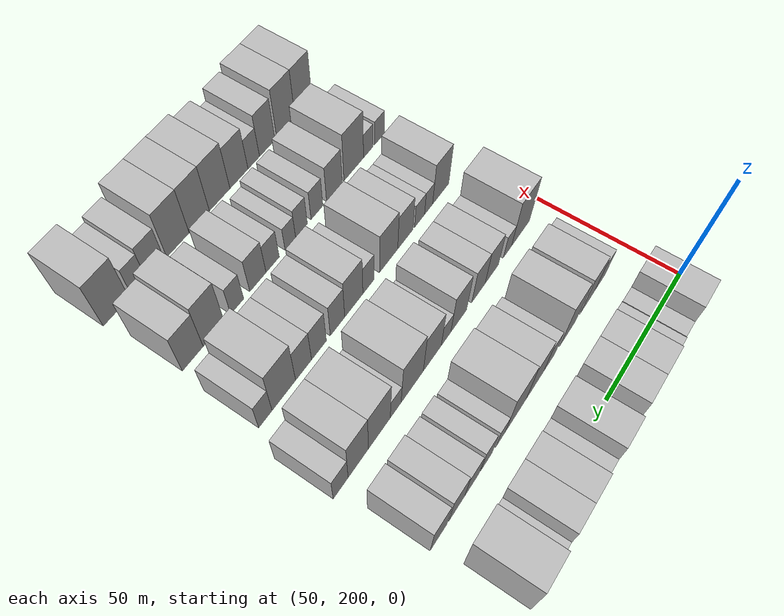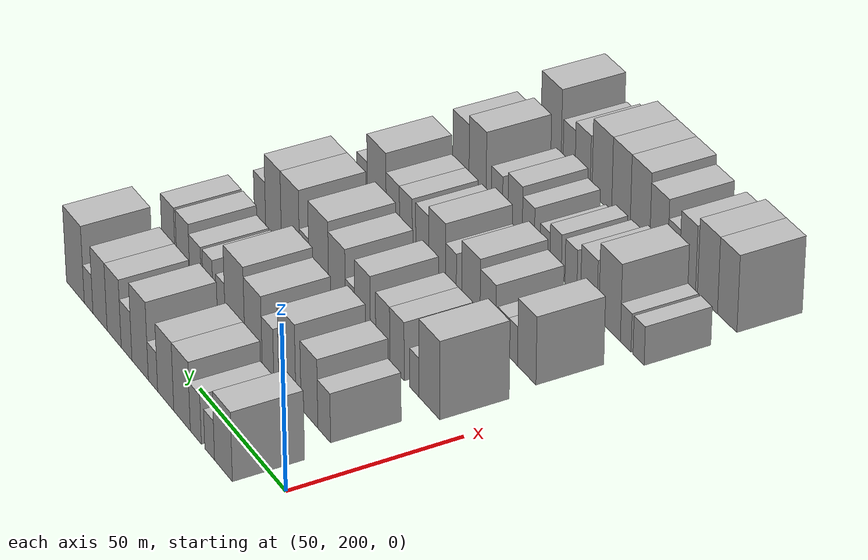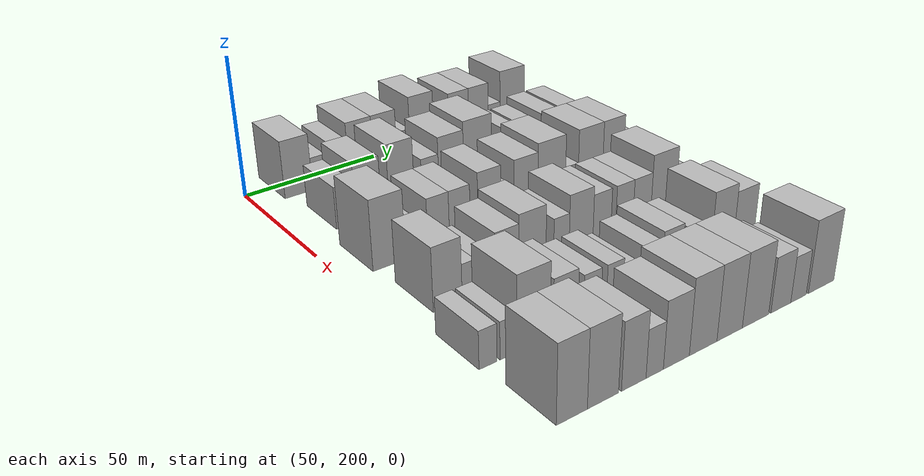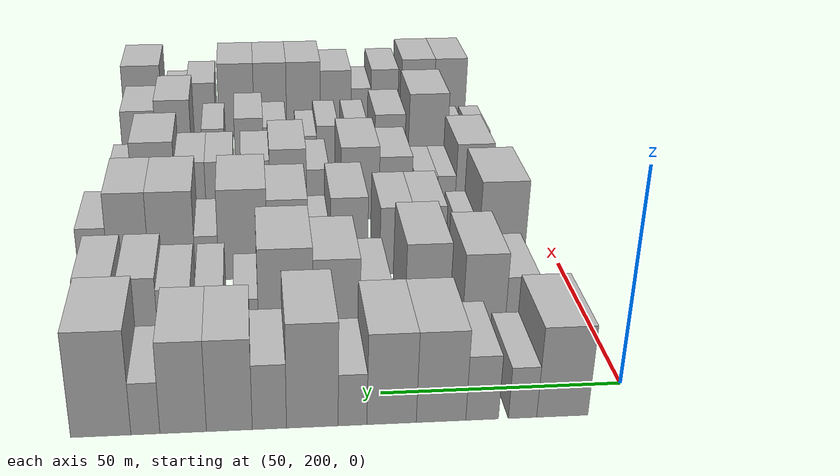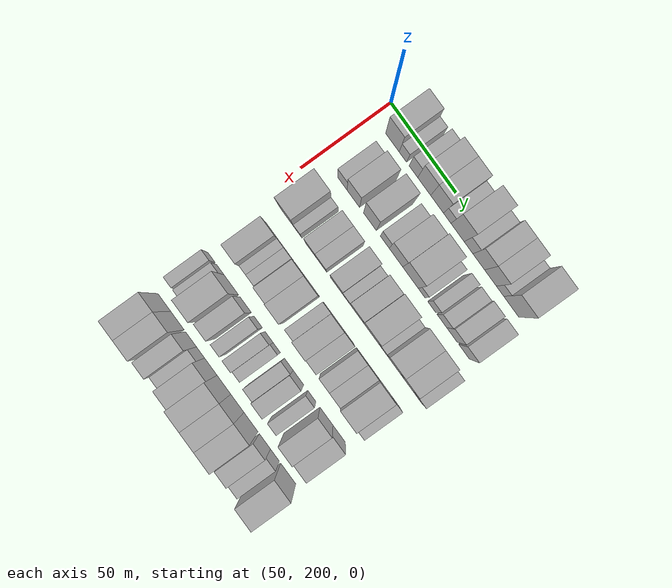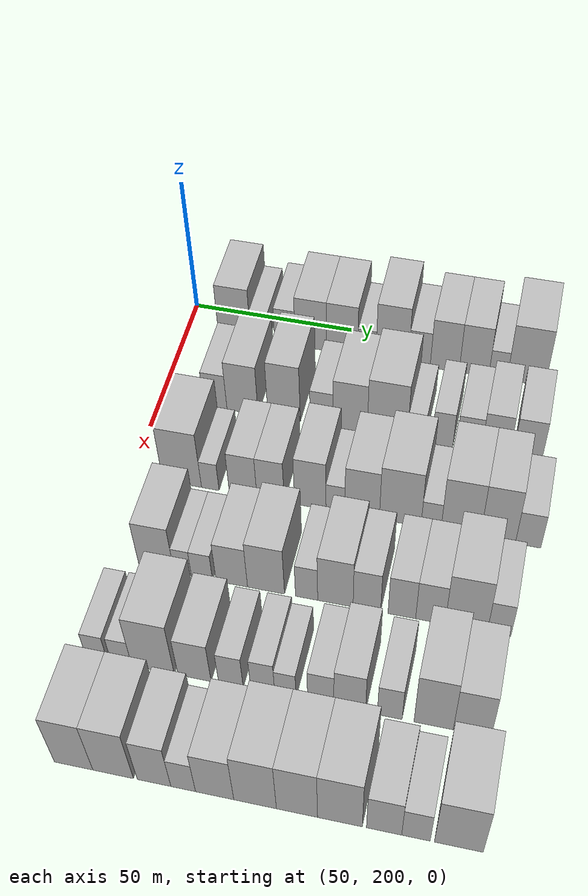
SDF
<sdf version="1.6">
 <world name="default">
  <model name="building_82">
   <static>1</static>
   <pose>50.0000 214.9138 0 0.000000 0.000000 0.000000</pose>
   <link name="link">
    <pose>0 0 10.50 0 0 0</pose>
    <collision name="collision"><geometry><box><size>20.0000 10.3367 21.0000</size></box></geometry></collision>
    <visual name="visual">
     <cast_shadows>0</cast_shadows>
     <geometry><box><size>20.0000 10.3367 21.0000</size></box></geometry>
     <material>
      <script>
       <uri>model://HANNAS_wall/materials/scripts</uri>
       <uri>model://HANNAS_wall/materials/textures</uri>
       <name>vrc/HANNAS_wall</name>
      </script>
     </material>
    </visual>
   </link>
  </model>
  <model name="building_83">
   <static>1</static>
   <pose>50.0000 222.9313 0 0.000000 0.000000 0.000000</pose>
   <link name="link">
    <pose>0 0 6.00 0 0 0</pose>
    <collision name="collision"><geometry><box><size>20.0000 5.6983 12.0000</size></box></geometry></collision>
    <visual name="visual">
     <cast_shadows>0</cast_shadows>
     <geometry><box><size>20.0000 5.6983 12.0000</size></box></geometry>
     <material>
      <script>
       <uri>model://HANNAS_wall/materials/scripts</uri>
       <uri>model://HANNAS_wall/materials/textures</uri>
       <name>vrc/HANNAS_wall</name>
      </script>
     </material>
    </visual>
   </link>
  </model>
  <model name="building_84">
   <static>1</static>
   <pose>50.0000 231.0494 0 0.000000 0.000000 0.000000</pose>
   <link name="link">
    <pose>0 0 7.50 0 0 0</pose>
    <collision name="collision"><geometry><box><size>20.0000 6.5378 15.0000</size></box></geometry></collision>
    <visual name="visual">
     <cast_shadows>0</cast_shadows>
     <geometry><box><size>20.0000 6.5378 15.0000</size></box></geometry>
     <material>
      <script>
       <uri>model://HANNAS_wall/materials/scripts</uri>
       <uri>model://HANNAS_wall/materials/textures</uri>
       <name>vrc/HANNAS_wall</name>
      </script>
     </material>
    </visual>
   </link>
  </model>
  <model name="building_85">
   <static>1</static>
   <pose>50.0000 239.2619 0 0.000000 0.000000 0.000000</pose>
   <link name="link">
    <pose>0 0 10.50 0 0 0</pose>
    <collision name="collision"><geometry><box><size>20.0000 9.8873 21.0000</size></box></geometry></collision>
    <visual name="visual">
     <cast_shadows>0</cast_shadows>
     <geometry><box><size>20.0000 9.8873 21.0000</size></box></geometry>
     <material>
      <script>
       <uri>model://HANNAS_wall/materials/scripts</uri>
       <uri>model://HANNAS_wall/materials/textures</uri>
       <name>vrc/HANNAS_wall</name>
      </script>
     </material>
    </visual>
   </link>
  </model>
  <model name="building_86">
   <static>1</static>
   <pose>50.0000 249.1035 0 0.000000 0.000000 0.000000</pose>
   <link name="link">
    <pose>0 0 10.50 0 0 0</pose>
    <collision name="collision"><geometry><box><size>20.0000 9.7959 21.0000</size></box></geometry></collision>
    <visual name="visual">
     <cast_shadows>0</cast_shadows>
     <geometry><box><size>20.0000 9.7959 21.0000</size></box></geometry>
     <material>
      <script>
       <uri>model://HANNAS_wall/materials/scripts</uri>
       <uri>model://HANNAS_wall/materials/textures</uri>
       <name>vrc/HANNAS_wall</name>
      </script>
     </material>
    </visual>
   </link>
  </model>
  <model name="building_87">
   <static>1</static>
   <pose>50.0000 256.8432 0 0.000000 0.000000 0.000000</pose>
   <link name="link">
    <pose>0 0 6.00 0 0 0</pose>
    <collision name="collision"><geometry><box><size>20.0000 5.6834 12.0000</size></box></geometry></collision>
    <visual name="visual">
     <cast_shadows>0</cast_shadows>
     <geometry><box><size>20.0000 5.6834 12.0000</size></box></geometry>
     <material>
      <script>
       <uri>model://HANNAS_wall/materials/scripts</uri>
       <uri>model://HANNAS_wall/materials/textures</uri>
       <name>vrc/HANNAS_wall</name>
      </script>
     </material>
    </visual>
   </link>
  </model>
  <model name="building_88">
   <static>1</static>
   <pose>50.0000 264.7592 0 0.000000 0.000000 0.000000</pose>
   <link name="link">
    <pose>0 0 12.00 0 0 0</pose>
    <collision name="collision"><geometry><box><size>20.0000 10.1486 24.0000</size></box></geometry></collision>
    <visual name="visual">
     <cast_shadows>0</cast_shadows>
     <geometry><box><size>20.0000 10.1486 24.0000</size></box></geometry>
     <material>
      <script>
       <uri>model://HANNAS_wall/materials/scripts</uri>
       <uri>model://HANNAS_wall/materials/textures</uri>
       <name>vrc/HANNAS_wall</name>
      </script>
     </material>
    </visual>
   </link>
  </model>
  <model name="building_89">
   <static>1</static>
   <pose>50.0000 273.1756 0 0.000000 0.000000 0.000000</pose>
   <link name="link">
    <pose>0 0 7.50 0 0 0</pose>
    <collision name="collision"><geometry><box><size>20.0000 6.6842 15.0000</size></box></geometry></collision>
    <visual name="visual">
     <cast_shadows>0</cast_shadows>
     <geometry><box><size>20.0000 6.6842 15.0000</size></box></geometry>
     <material>
      <script>
       <uri>model://HANNAS_wall/materials/scripts</uri>
       <uri>model://HANNAS_wall/materials/textures</uri>
       <name>vrc/HANNAS_wall</name>
      </script>
     </material>
    </visual>
   </link>
  </model>
  <model name="building_90">
   <static>1</static>
   <pose>50.0000 280.9811 0 0.000000 0.000000 0.000000</pose>
   <link name="link">
    <pose>0 0 10.50 0 0 0</pose>
    <collision name="collision"><geometry><box><size>20.0000 8.9268 21.0000</size></box></geometry></collision>
    <visual name="visual">
     <cast_shadows>0</cast_shadows>
     <geometry><box><size>20.0000 8.9268 21.0000</size></box></geometry>
     <material>
      <script>
       <uri>model://HANNAS_wall/materials/scripts</uri>
       <uri>model://HANNAS_wall/materials/textures</uri>
       <name>vrc/HANNAS_wall</name>
      </script>
     </material>
    </visual>
   </link>
  </model>
  <model name="building_91">
   <static>1</static>
   <pose>50.0000 289.9585 0 0.000000 0.000000 0.000000</pose>
   <link name="link">
    <pose>0 0 10.50 0 0 0</pose>
    <collision name="collision"><geometry><box><size>20.0000 9.0280 21.0000</size></box></geometry></collision>
    <visual name="visual">
     <cast_shadows>0</cast_shadows>
     <geometry><box><size>20.0000 9.0280 21.0000</size></box></geometry>
     <material>
      <script>
       <uri>model://HANNAS_wall/materials/scripts</uri>
       <uri>model://HANNAS_wall/materials/textures</uri>
       <name>vrc/HANNAS_wall</name>
      </script>
     </material>
    </visual>
   </link>
  </model>
  <model name="building_92">
   <static>1</static>
   <pose>50.0000 297.2734 0 0.000000 0.000000 0.000000</pose>
   <link name="link">
    <pose>0 0 6.00 0 0 0</pose>
    <collision name="collision"><geometry><box><size>20.0000 5.6020 12.0000</size></box></geometry></collision>
    <visual name="visual">
     <cast_shadows>0</cast_shadows>
     <geometry><box><size>20.0000 5.6020 12.0000</size></box></geometry>
     <material>
      <script>
       <uri>model://HANNAS_wall/materials/scripts</uri>
       <uri>model://HANNAS_wall/materials/textures</uri>
       <name>vrc/HANNAS_wall</name>
      </script>
     </material>
    </visual>
   </link>
  </model>
  <model name="building_93">
   <static>1</static>
   <pose>50.0000 305.8729 0 0.000000 0.000000 0.000000</pose>
   <link name="link">
    <pose>0 0 12.00 0 0 0</pose>
    <collision name="collision"><geometry><box><size>20.0000 11.5970 24.0000</size></box></geometry></collision>
    <visual name="visual">
     <cast_shadows>0</cast_shadows>
     <geometry><box><size>20.0000 11.5970 24.0000</size></box></geometry>
     <material>
      <script>
       <uri>model://HANNAS_wall/materials/scripts</uri>
       <uri>model://HANNAS_wall/materials/textures</uri>
       <name>vrc/HANNAS_wall</name>
      </script>
     </material>
    </visual>
   </link>
  </model>
  <model name="building_200">
   <static>1</static>
   <pose>79.0000 216.7693 0 0.000000 0.000000 0.000000</pose>
   <link name="link">
    <pose>0 0 7.50 0 0 0</pose>
    <collision name="collision"><geometry><box><size>20.0000 7.1513 15.0000</size></box></geometry></collision>
    <visual name="visual">
     <cast_shadows>0</cast_shadows>
     <geometry><box><size>20.0000 7.1513 15.0000</size></box></geometry>
     <material>
      <script>
       <uri>model://HANNAS_wall/materials/scripts</uri>
       <uri>model://HANNAS_wall/materials/textures</uri>
       <name>vrc/HANNAS_wall</name>
      </script>
     </material>
    </visual>
   </link>
  </model>
  <model name="building_201">
   <static>1</static>
   <pose>79.0000 225.1079 0 0.000000 0.000000 0.000000</pose>
   <link name="link">
    <pose>0 0 10.50 0 0 0</pose>
    <collision name="collision"><geometry><box><size>20.0000 9.5257 21.0000</size></box></geometry></collision>
    <visual name="visual">
     <cast_shadows>0</cast_shadows>
     <geometry><box><size>20.0000 9.5257 21.0000</size></box></geometry>
     <material>
      <script>
       <uri>model://HANNAS_wall/materials/scripts</uri>
       <uri>model://HANNAS_wall/materials/textures</uri>
       <name>vrc/HANNAS_wall</name>
      </script>
     </material>
    </visual>
   </link>
  </model>
  <model name="building_202">
   <static>1</static>
   <pose>79.0000 237.7878 0 0.000000 0.000000 0.000000</pose>
   <link name="link">
    <pose>0 0 12.00 0 0 0</pose>
    <collision name="collision"><geometry><box><size>20.0000 9.8343 24.0000</size></box></geometry></collision>
    <visual name="visual">
     <cast_shadows>0</cast_shadows>
     <geometry><box><size>20.0000 9.8343 24.0000</size></box></geometry>
     <material>
      <script>
       <uri>model://HANNAS_wall/materials/scripts</uri>
       <uri>model://HANNAS_wall/materials/textures</uri>
       <name>vrc/HANNAS_wall</name>
      </script>
     </material>
    </visual>
   </link>
  </model>
  <model name="building_203">
   <static>1</static>
   <pose>79.0000 249.1146 0 0.000000 0.000000 0.000000</pose>
   <link name="link">
    <pose>0 0 7.50 0 0 0</pose>
    <collision name="collision"><geometry><box><size>20.0000 6.8191 15.0000</size></box></geometry></collision>
    <visual name="visual">
     <cast_shadows>0</cast_shadows>
     <geometry><box><size>20.0000 6.8191 15.0000</size></box></geometry>
     <material>
      <script>
       <uri>model://HANNAS_wall/materials/scripts</uri>
       <uri>model://HANNAS_wall/materials/textures</uri>
       <name>vrc/HANNAS_wall</name>
      </script>
     </material>
    </visual>
   </link>
  </model>
  <model name="building_204">
   <static>1</static>
   <pose>79.0000 257.6647 0 0.000000 0.000000 0.000000</pose>
   <link name="link">
    <pose>0 0 10.50 0 0 0</pose>
    <collision name="collision"><geometry><box><size>20.0000 10.2810 21.0000</size></box></geometry></collision>
    <visual name="visual">
     <cast_shadows>0</cast_shadows>
     <geometry><box><size>20.0000 10.2810 21.0000</size></box></geometry>
     <material>
      <script>
       <uri>model://HANNAS_wall/materials/scripts</uri>
       <uri>model://HANNAS_wall/materials/textures</uri>
       <name>vrc/HANNAS_wall</name>
      </script>
     </material>
    </visual>
   </link>
  </model>
  <model name="building_205">
   <static>1</static>
   <pose>79.0000 268.7401 0 0.000000 0.000000 0.000000</pose>
   <link name="link">
    <pose>0 0 12.00 0 0 0</pose>
    <collision name="collision"><geometry><box><size>20.0000 11.8698 24.0000</size></box></geometry></collision>
    <visual name="visual">
     <cast_shadows>0</cast_shadows>
     <geometry><box><size>20.0000 11.8698 24.0000</size></box></geometry>
     <material>
      <script>
       <uri>model://HANNAS_wall/materials/scripts</uri>
       <uri>model://HANNAS_wall/materials/textures</uri>
       <name>vrc/HANNAS_wall</name>
      </script>
     </material>
    </visual>
   </link>
  </model>
  <model name="building_206">
   <static>1</static>
   <pose>79.0000 277.2997 0 0.000000 0.000000 0.000000</pose>
   <link name="link">
    <pose>0 0 6.00 0 0 0</pose>
    <collision name="collision"><geometry><box><size>20.0000 5.2495 12.0000</size></box></geometry></collision>
    <visual name="visual">
     <cast_shadows>0</cast_shadows>
     <geometry><box><size>20.0000 5.2495 12.0000</size></box></geometry>
     <material>
      <script>
       <uri>model://HANNAS_wall/materials/scripts</uri>
       <uri>model://HANNAS_wall/materials/textures</uri>
       <name>vrc/HANNAS_wall</name>
      </script>
     </material>
    </visual>
   </link>
  </model>
  <model name="building_207">
   <static>1</static>
   <pose>79.0000 284.9890 0 0.000000 0.000000 0.000000</pose>
   <link name="link">
    <pose>0 0 7.50 0 0 0</pose>
    <collision name="collision"><geometry><box><size>20.0000 6.1292 15.0000</size></box></geometry></collision>
    <visual name="visual">
     <cast_shadows>0</cast_shadows>
     <geometry><box><size>20.0000 6.1292 15.0000</size></box></geometry>
     <material>
      <script>
       <uri>model://HANNAS_wall/materials/scripts</uri>
       <uri>model://HANNAS_wall/materials/textures</uri>
       <name>vrc/HANNAS_wall</name>
      </script>
     </material>
    </visual>
   </link>
  </model>
  <model name="building_208">
   <static>1</static>
   <pose>79.0000 292.7403 0 0.000000 0.000000 0.000000</pose>
   <link name="link">
    <pose>0 0 7.50 0 0 0</pose>
    <collision name="collision"><geometry><box><size>20.0000 7.3733 15.0000</size></box></geometry></collision>
    <visual name="visual">
     <cast_shadows>0</cast_shadows>
     <geometry><box><size>20.0000 7.3733 15.0000</size></box></geometry>
     <material>
      <script>
       <uri>model://HANNAS_wall/materials/scripts</uri>
       <uri>model://HANNAS_wall/materials/textures</uri>
       <name>vrc/HANNAS_wall</name>
      </script>
     </material>
    </visual>
   </link>
  </model>
  <model name="building_209">
   <static>1</static>
   <pose>79.0000 300.4870 0 0.000000 0.000000 0.000000</pose>
   <link name="link">
    <pose>0 0 9.00 0 0 0</pose>
    <collision name="collision"><geometry><box><size>20.0000 8.1201 18.0000</size></box></geometry></collision>
    <visual name="visual">
     <cast_shadows>0</cast_shadows>
     <geometry><box><size>20.0000 8.1201 18.0000</size></box></geometry>
     <material>
      <script>
       <uri>model://HANNAS_wall/materials/scripts</uri>
       <uri>model://HANNAS_wall/materials/textures</uri>
       <name>vrc/HANNAS_wall</name>
      </script>
     </material>
    </visual>
   </link>
  </model>
  <model name="building_210">
   <static>1</static>
   <pose>79.0000 309.6869 0 0.000000 0.000000 0.000000</pose>
   <link name="link">
    <pose>0 0 9.00 0 0 0</pose>
    <collision name="collision"><geometry><box><size>20.0000 8.2798 18.0000</size></box></geometry></collision>
    <visual name="visual">
     <cast_shadows>0</cast_shadows>
     <geometry><box><size>20.0000 8.2798 18.0000</size></box></geometry>
     <material>
      <script>
       <uri>model://HANNAS_wall/materials/scripts</uri>
       <uri>model://HANNAS_wall/materials/textures</uri>
       <name>vrc/HANNAS_wall</name>
      </script>
     </material>
    </visual>
   </link>
  </model>
  <model name="building_314">
   <static>1</static>
   <pose>108.0000 214.9882 0 0.000000 0.000000 0.000000</pose>
   <link name="link">
    <pose>0 0 12.00 0 0 0</pose>
    <collision name="collision"><geometry><box><size>20.0000 11.4412 24.0000</size></box></geometry></collision>
    <visual name="visual">
     <cast_shadows>0</cast_shadows>
     <geometry><box><size>20.0000 11.4412 24.0000</size></box></geometry>
     <material>
      <script>
       <uri>model://HANNAS_wall/materials/scripts</uri>
       <uri>model://HANNAS_wall/materials/textures</uri>
       <name>vrc/HANNAS_wall</name>
      </script>
     </material>
    </visual>
   </link>
  </model>
  <model name="building_315">
   <static>1</static>
   <pose>108.0000 223.2821 0 0.000000 0.000000 0.000000</pose>
   <link name="link">
    <pose>0 0 6.00 0 0 0</pose>
    <collision name="collision"><geometry><box><size>20.0000 5.1465 12.0000</size></box></geometry></collision>
    <visual name="visual">
     <cast_shadows>0</cast_shadows>
     <geometry><box><size>20.0000 5.1465 12.0000</size></box></geometry>
     <material>
      <script>
       <uri>model://HANNAS_wall/materials/scripts</uri>
       <uri>model://HANNAS_wall/materials/textures</uri>
       <name>vrc/HANNAS_wall</name>
      </script>
     </material>
    </visual>
   </link>
  </model>
  <model name="building_316">
   <static>1</static>
   <pose>108.0000 232.8754 0 0.000000 0.000000 0.000000</pose>
   <link name="link">
    <pose>0 0 9.00 0 0 0</pose>
    <collision name="collision"><geometry><box><size>20.0000 8.0402 18.0000</size></box></geometry></collision>
    <visual name="visual">
     <cast_shadows>0</cast_shadows>
     <geometry><box><size>20.0000 8.0402 18.0000</size></box></geometry>
     <material>
      <script>
       <uri>model://HANNAS_wall/materials/scripts</uri>
       <uri>model://HANNAS_wall/materials/textures</uri>
       <name>vrc/HANNAS_wall</name>
      </script>
     </material>
    </visual>
   </link>
  </model>
  <model name="building_317">
   <static>1</static>
   <pose>108.0000 240.8619 0 0.000000 0.000000 0.000000</pose>
   <link name="link">
    <pose>0 0 9.00 0 0 0</pose>
    <collision name="collision"><geometry><box><size>20.0000 7.9327 18.0000</size></box></geometry></collision>
    <visual name="visual">
     <cast_shadows>0</cast_shadows>
     <geometry><box><size>20.0000 7.9327 18.0000</size></box></geometry>
     <material>
      <script>
       <uri>model://HANNAS_wall/materials/scripts</uri>
       <uri>model://HANNAS_wall/materials/textures</uri>
       <name>vrc/HANNAS_wall</name>
      </script>
     </material>
    </visual>
   </link>
  </model>
  <model name="building_318">
   <static>1</static>
   <pose>108.0000 252.3360 0 0.000000 0.000000 0.000000</pose>
   <link name="link">
    <pose>0 0 10.50 0 0 0</pose>
    <collision name="collision"><geometry><box><size>20.0000 9.0155 21.0000</size></box></geometry></collision>
    <visual name="visual">
     <cast_shadows>0</cast_shadows>
     <geometry><box><size>20.0000 9.0155 21.0000</size></box></geometry>
     <material>
      <script>
       <uri>model://HANNAS_wall/materials/scripts</uri>
       <uri>model://HANNAS_wall/materials/textures</uri>
       <name>vrc/HANNAS_wall</name>
      </script>
     </material>
    </visual>
   </link>
  </model>
  <model name="building_319">
   <static>1</static>
   <pose>108.0000 259.5348 0 0.000000 0.000000 0.000000</pose>
   <link name="link">
    <pose>0 0 6.00 0 0 0</pose>
    <collision name="collision"><geometry><box><size>20.0000 5.3821 12.0000</size></box></geometry></collision>
    <visual name="visual">
     <cast_shadows>0</cast_shadows>
     <geometry><box><size>20.0000 5.3821 12.0000</size></box></geometry>
     <material>
      <script>
       <uri>model://HANNAS_wall/materials/scripts</uri>
       <uri>model://HANNAS_wall/materials/textures</uri>
       <name>vrc/HANNAS_wall</name>
      </script>
     </material>
    </visual>
   </link>
  </model>
  <model name="building_320">
   <static>1</static>
   <pose>108.0000 267.1185 0 0.000000 0.000000 0.000000</pose>
   <link name="link">
    <pose>0 0 10.50 0 0 0</pose>
    <collision name="collision"><geometry><box><size>20.0000 9.7854 21.0000</size></box></geometry></collision>
    <visual name="visual">
     <cast_shadows>0</cast_shadows>
     <geometry><box><size>20.0000 9.7854 21.0000</size></box></geometry>
     <material>
      <script>
       <uri>model://HANNAS_wall/materials/scripts</uri>
       <uri>model://HANNAS_wall/materials/textures</uri>
       <name>vrc/HANNAS_wall</name>
      </script>
     </material>
    </visual>
   </link>
  </model>
  <model name="building_321">
   <static>1</static>
   <pose>108.0000 277.8804 0 0.000000 0.000000 0.000000</pose>
   <link name="link">
    <pose>0 0 12.00 0 0 0</pose>
    <collision name="collision"><geometry><box><size>20.0000 11.7383 24.0000</size></box></geometry></collision>
    <visual name="visual">
     <cast_shadows>0</cast_shadows>
     <geometry><box><size>20.0000 11.7383 24.0000</size></box></geometry>
     <material>
      <script>
       <uri>model://HANNAS_wall/materials/scripts</uri>
       <uri>model://HANNAS_wall/materials/textures</uri>
       <name>vrc/HANNAS_wall</name>
      </script>
     </material>
    </visual>
   </link>
  </model>
  <model name="building_322">
   <static>1</static>
   <pose>108.0000 286.5412 0 0.000000 0.000000 0.000000</pose>
   <link name="link">
    <pose>0 0 6.00 0 0 0</pose>
    <collision name="collision"><geometry><box><size>20.0000 5.5834 12.0000</size></box></geometry></collision>
    <visual name="visual">
     <cast_shadows>0</cast_shadows>
     <geometry><box><size>20.0000 5.5834 12.0000</size></box></geometry>
     <material>
      <script>
       <uri>model://HANNAS_wall/materials/scripts</uri>
       <uri>model://HANNAS_wall/materials/textures</uri>
       <name>vrc/HANNAS_wall</name>
      </script>
     </material>
    </visual>
   </link>
  </model>
  <model name="building_323">
   <static>1</static>
   <pose>108.0000 294.8271 0 0.000000 0.000000 0.000000</pose>
   <link name="link">
    <pose>0 0 12.00 0 0 0</pose>
    <collision name="collision"><geometry><box><size>20.0000 10.9882 24.0000</size></box></geometry></collision>
    <visual name="visual">
     <cast_shadows>0</cast_shadows>
     <geometry><box><size>20.0000 10.9882 24.0000</size></box></geometry>
     <material>
      <script>
       <uri>model://HANNAS_wall/materials/scripts</uri>
       <uri>model://HANNAS_wall/materials/textures</uri>
       <name>vrc/HANNAS_wall</name>
      </script>
     </material>
    </visual>
   </link>
  </model>
  <model name="building_324">
   <static>1</static>
   <pose>108.0000 305.1737 0 0.000000 0.000000 0.000000</pose>
   <link name="link">
    <pose>0 0 12.00 0 0 0</pose>
    <collision name="collision"><geometry><box><size>20.0000 9.7052 24.0000</size></box></geometry></collision>
    <visual name="visual">
     <cast_shadows>0</cast_shadows>
     <geometry><box><size>20.0000 9.7052 24.0000</size></box></geometry>
     <material>
      <script>
       <uri>model://HANNAS_wall/materials/scripts</uri>
       <uri>model://HANNAS_wall/materials/textures</uri>
       <name>vrc/HANNAS_wall</name>
      </script>
     </material>
    </visual>
   </link>
  </model>
  <model name="building_325">
   <static>1</static>
   <pose>108.0000 313.5355 0 0.000000 0.000000 0.000000</pose>
   <link name="link">
    <pose>0 0 7.50 0 0 0</pose>
    <collision name="collision"><geometry><box><size>20.0000 7.0183 15.0000</size></box></geometry></collision>
    <visual name="visual">
     <cast_shadows>0</cast_shadows>
     <geometry><box><size>20.0000 7.0183 15.0000</size></box></geometry>
     <material>
      <script>
       <uri>model://HANNAS_wall/materials/scripts</uri>
       <uri>model://HANNAS_wall/materials/textures</uri>
       <name>vrc/HANNAS_wall</name>
      </script>
     </material>
    </visual>
   </link>
  </model>
  <model name="building_431">
   <static>1</static>
   <pose>137.0000 216.3632 0 0.000000 0.000000 0.000000</pose>
   <link name="link">
    <pose>0 0 10.50 0 0 0</pose>
    <collision name="collision"><geometry><box><size>20.0000 9.8466 21.0000</size></box></geometry></collision>
    <visual name="visual">
     <cast_shadows>0</cast_shadows>
     <geometry><box><size>20.0000 9.8466 21.0000</size></box></geometry>
     <material>
      <script>
       <uri>model://HANNAS_wall/materials/scripts</uri>
       <uri>model://HANNAS_wall/materials/textures</uri>
       <name>vrc/HANNAS_wall</name>
      </script>
     </material>
    </visual>
   </link>
  </model>
  <model name="building_432">
   <static>1</static>
   <pose>137.0000 223.7061 0 0.000000 0.000000 0.000000</pose>
   <link name="link">
    <pose>0 0 6.00 0 0 0</pose>
    <collision name="collision"><geometry><box><size>20.0000 4.8393 12.0000</size></box></geometry></collision>
    <visual name="visual">
     <cast_shadows>0</cast_shadows>
     <geometry><box><size>20.0000 4.8393 12.0000</size></box></geometry>
     <material>
      <script>
       <uri>model://HANNAS_wall/materials/scripts</uri>
       <uri>model://HANNAS_wall/materials/textures</uri>
       <name>vrc/HANNAS_wall</name>
      </script>
     </material>
    </visual>
   </link>
  </model>
  <model name="building_433">
   <static>1</static>
   <pose>137.0000 229.0638 0 0.000000 0.000000 0.000000</pose>
   <link name="link">
    <pose>0 0 6.00 0 0 0</pose>
    <collision name="collision"><geometry><box><size>20.0000 5.8761 12.0000</size></box></geometry></collision>
    <visual name="visual">
     <cast_shadows>0</cast_shadows>
     <geometry><box><size>20.0000 5.8761 12.0000</size></box></geometry>
     <material>
      <script>
       <uri>model://HANNAS_wall/materials/scripts</uri>
       <uri>model://HANNAS_wall/materials/textures</uri>
       <name>vrc/HANNAS_wall</name>
      </script>
     </material>
    </visual>
   </link>
  </model>
  <model name="building_434">
   <static>1</static>
   <pose>137.0000 237.3495 0 0.000000 0.000000 0.000000</pose>
   <link name="link">
    <pose>0 0 9.00 0 0 0</pose>
    <collision name="collision"><geometry><box><size>20.0000 8.6954 18.0000</size></box></geometry></collision>
    <visual name="visual">
     <cast_shadows>0</cast_shadows>
     <geometry><box><size>20.0000 8.6954 18.0000</size></box></geometry>
     <material>
      <script>
       <uri>model://HANNAS_wall/materials/scripts</uri>
       <uri>model://HANNAS_wall/materials/textures</uri>
       <name>vrc/HANNAS_wall</name>
      </script>
     </material>
    </visual>
   </link>
  </model>
  <model name="building_435">
   <static>1</static>
   <pose>137.0000 246.7951 0 0.000000 0.000000 0.000000</pose>
   <link name="link">
    <pose>0 0 10.50 0 0 0</pose>
    <collision name="collision"><geometry><box><size>20.0000 10.1958 21.0000</size></box></geometry></collision>
    <visual name="visual">
     <cast_shadows>0</cast_shadows>
     <geometry><box><size>20.0000 10.1958 21.0000</size></box></geometry>
     <material>
      <script>
       <uri>model://HANNAS_wall/materials/scripts</uri>
       <uri>model://HANNAS_wall/materials/textures</uri>
       <name>vrc/HANNAS_wall</name>
      </script>
     </material>
    </visual>
   </link>
  </model>
  <model name="building_436">
   <static>1</static>
   <pose>137.0000 257.9232 0 0.000000 0.000000 0.000000</pose>
   <link name="link">
    <pose>0 0 7.50 0 0 0</pose>
    <collision name="collision"><geometry><box><size>20.0000 6.0602 15.0000</size></box></geometry></collision>
    <visual name="visual">
     <cast_shadows>0</cast_shadows>
     <geometry><box><size>20.0000 6.0602 15.0000</size></box></geometry>
     <material>
      <script>
       <uri>model://HANNAS_wall/materials/scripts</uri>
       <uri>model://HANNAS_wall/materials/textures</uri>
       <name>vrc/HANNAS_wall</name>
      </script>
     </material>
    </visual>
   </link>
  </model>
  <model name="building_437">
   <static>1</static>
   <pose>137.0000 265.7504 0 0.000000 0.000000 0.000000</pose>
   <link name="link">
    <pose>0 0 10.50 0 0 0</pose>
    <collision name="collision"><geometry><box><size>20.0000 9.5942 21.0000</size></box></geometry></collision>
    <visual name="visual">
     <cast_shadows>0</cast_shadows>
     <geometry><box><size>20.0000 9.5942 21.0000</size></box></geometry>
     <material>
      <script>
       <uri>model://HANNAS_wall/materials/scripts</uri>
       <uri>model://HANNAS_wall/materials/textures</uri>
       <name>vrc/HANNAS_wall</name>
      </script>
     </material>
    </visual>
   </link>
  </model>
  <model name="building_438">
   <static>1</static>
   <pose>137.0000 274.2566 0 0.000000 0.000000 0.000000</pose>
   <link name="link">
    <pose>0 0 9.00 0 0 0</pose>
    <collision name="collision"><geometry><box><size>20.0000 7.4181 18.0000</size></box></geometry></collision>
    <visual name="visual">
     <cast_shadows>0</cast_shadows>
     <geometry><box><size>20.0000 7.4181 18.0000</size></box></geometry>
     <material>
      <script>
       <uri>model://HANNAS_wall/materials/scripts</uri>
       <uri>model://HANNAS_wall/materials/textures</uri>
       <name>vrc/HANNAS_wall</name>
      </script>
     </material>
    </visual>
   </link>
  </model>
  <model name="building_439">
   <static>1</static>
   <pose>137.0000 283.6628 0 0.000000 0.000000 0.000000</pose>
   <link name="link">
    <pose>0 0 9.00 0 0 0</pose>
    <collision name="collision"><geometry><box><size>20.0000 7.3943 18.0000</size></box></geometry></collision>
    <visual name="visual">
     <cast_shadows>0</cast_shadows>
     <geometry><box><size>20.0000 7.3943 18.0000</size></box></geometry>
     <material>
      <script>
       <uri>model://HANNAS_wall/materials/scripts</uri>
       <uri>model://HANNAS_wall/materials/textures</uri>
       <name>vrc/HANNAS_wall</name>
      </script>
     </material>
    </visual>
   </link>
  </model>
  <model name="building_440">
   <static>1</static>
   <pose>137.0000 291.2670 0 0.000000 0.000000 0.000000</pose>
   <link name="link">
    <pose>0 0 9.00 0 0 0</pose>
    <collision name="collision"><geometry><box><size>20.0000 7.8141 18.0000</size></box></geometry></collision>
    <visual name="visual">
     <cast_shadows>0</cast_shadows>
     <geometry><box><size>20.0000 7.8141 18.0000</size></box></geometry>
     <material>
      <script>
       <uri>model://HANNAS_wall/materials/scripts</uri>
       <uri>model://HANNAS_wall/materials/textures</uri>
       <name>vrc/HANNAS_wall</name>
      </script>
     </material>
    </visual>
   </link>
  </model>
  <model name="building_441">
   <static>1</static>
   <pose>137.0000 300.7685 0 0.000000 0.000000 0.000000</pose>
   <link name="link">
    <pose>0 0 12.00 0 0 0</pose>
    <collision name="collision"><geometry><box><size>20.0000 11.1889 24.0000</size></box></geometry></collision>
    <visual name="visual">
     <cast_shadows>0</cast_shadows>
     <geometry><box><size>20.0000 11.1889 24.0000</size></box></geometry>
     <material>
      <script>
       <uri>model://HANNAS_wall/materials/scripts</uri>
       <uri>model://HANNAS_wall/materials/textures</uri>
       <name>vrc/HANNAS_wall</name>
      </script>
     </material>
    </visual>
   </link>
  </model>
  <model name="building_442">
   <static>1</static>
   <pose>137.0000 309.4513 0 0.000000 0.000000 0.000000</pose>
   <link name="link">
    <pose>0 0 7.50 0 0 0</pose>
    <collision name="collision"><geometry><box><size>20.0000 6.1768 15.0000</size></box></geometry></collision>
    <visual name="visual">
     <cast_shadows>0</cast_shadows>
     <geometry><box><size>20.0000 6.1768 15.0000</size></box></geometry>
     <material>
      <script>
       <uri>model://HANNAS_wall/materials/scripts</uri>
       <uri>model://HANNAS_wall/materials/textures</uri>
       <name>vrc/HANNAS_wall</name>
      </script>
     </material>
    </visual>
   </link>
  </model>
  <model name="building_551">
   <static>1</static>
   <pose>166.0000 209.1065 0 0.000000 0.000000 0.000000</pose>
   <link name="link">
    <pose>0 0 6.00 0 0 0</pose>
    <collision name="collision"><geometry><box><size>20.0000 5.7775 12.0000</size></box></geometry></collision>
    <visual name="visual">
     <cast_shadows>0</cast_shadows>
     <geometry><box><size>20.0000 5.7775 12.0000</size></box></geometry>
     <material>
      <script>
       <uri>model://HANNAS_wall/materials/scripts</uri>
       <uri>model://HANNAS_wall/materials/textures</uri>
       <name>vrc/HANNAS_wall</name>
      </script>
     </material>
    </visual>
   </link>
  </model>
  <model name="building_552">
   <static>1</static>
   <pose>166.0000 215.7816 0 0.000000 0.000000 0.000000</pose>
   <link name="link">
    <pose>0 0 6.00 0 0 0</pose>
    <collision name="collision"><geometry><box><size>20.0000 5.5727 12.0000</size></box></geometry></collision>
    <visual name="visual">
     <cast_shadows>0</cast_shadows>
     <geometry><box><size>20.0000 5.5727 12.0000</size></box></geometry>
     <material>
      <script>
       <uri>model://HANNAS_wall/materials/scripts</uri>
       <uri>model://HANNAS_wall/materials/textures</uri>
       <name>vrc/HANNAS_wall</name>
      </script>
     </material>
    </visual>
   </link>
  </model>
  <model name="building_553">
   <static>1</static>
   <pose>166.0000 224.2328 0 0.000000 0.000000 0.000000</pose>
   <link name="link">
    <pose>0 0 12.00 0 0 0</pose>
    <collision name="collision"><geometry><box><size>20.0000 11.3297 24.0000</size></box></geometry></collision>
    <visual name="visual">
     <cast_shadows>0</cast_shadows>
     <geometry><box><size>20.0000 11.3297 24.0000</size></box></geometry>
     <material>
      <script>
       <uri>model://HANNAS_wall/materials/scripts</uri>
       <uri>model://HANNAS_wall/materials/textures</uri>
       <name>vrc/HANNAS_wall</name>
      </script>
     </material>
    </visual>
   </link>
  </model>
  <model name="building_554">
   <static>1</static>
   <pose>166.0000 235.2764 0 0.000000 0.000000 0.000000</pose>
   <link name="link">
    <pose>0 0 9.00 0 0 0</pose>
    <collision name="collision"><geometry><box><size>20.0000 8.7575 18.0000</size></box></geometry></collision>
    <visual name="visual">
     <cast_shadows>0</cast_shadows>
     <geometry><box><size>20.0000 8.7575 18.0000</size></box></geometry>
     <material>
      <script>
       <uri>model://HANNAS_wall/materials/scripts</uri>
       <uri>model://HANNAS_wall/materials/textures</uri>
       <name>vrc/HANNAS_wall</name>
      </script>
     </material>
    </visual>
   </link>
  </model>
  <model name="building_555">
   <static>1</static>
   <pose>166.0000 244.8819 0 0.000000 0.000000 0.000000</pose>
   <link name="link">
    <pose>0 0 7.50 0 0 0</pose>
    <collision name="collision"><geometry><box><size>20.0000 6.4535 15.0000</size></box></geometry></collision>
    <visual name="visual">
     <cast_shadows>0</cast_shadows>
     <geometry><box><size>20.0000 6.4535 15.0000</size></box></geometry>
     <material>
      <script>
       <uri>model://HANNAS_wall/materials/scripts</uri>
       <uri>model://HANNAS_wall/materials/textures</uri>
       <name>vrc/HANNAS_wall</name>
      </script>
     </material>
    </visual>
   </link>
  </model>
  <model name="building_556">
   <static>1</static>
   <pose>166.0000 253.2286 0 0.000000 0.000000 0.000000</pose>
   <link name="link">
    <pose>0 0 7.50 0 0 0</pose>
    <collision name="collision"><geometry><box><size>20.0000 6.2398 15.0000</size></box></geometry></collision>
    <visual name="visual">
     <cast_shadows>0</cast_shadows>
     <geometry><box><size>20.0000 6.2398 15.0000</size></box></geometry>
     <material>
      <script>
       <uri>model://HANNAS_wall/materials/scripts</uri>
       <uri>model://HANNAS_wall/materials/textures</uri>
       <name>vrc/HANNAS_wall</name>
      </script>
     </material>
    </visual>
   </link>
  </model>
  <model name="building_557">
   <static>1</static>
   <pose>166.0000 259.1156 0 0.000000 0.000000 0.000000</pose>
   <link name="link">
    <pose>0 0 6.00 0 0 0</pose>
    <collision name="collision"><geometry><box><size>20.0000 5.5342 12.0000</size></box></geometry></collision>
    <visual name="visual">
     <cast_shadows>0</cast_shadows>
     <geometry><box><size>20.0000 5.5342 12.0000</size></box></geometry>
     <material>
      <script>
       <uri>model://HANNAS_wall/materials/scripts</uri>
       <uri>model://HANNAS_wall/materials/textures</uri>
       <name>vrc/HANNAS_wall</name>
      </script>
     </material>
    </visual>
   </link>
  </model>
  <model name="building_558">
   <static>1</static>
   <pose>166.0000 268.2504 0 0.000000 0.000000 0.000000</pose>
   <link name="link">
    <pose>0 0 7.50 0 0 0</pose>
    <collision name="collision"><geometry><box><size>20.0000 6.7356 15.0000</size></box></geometry></collision>
    <visual name="visual">
     <cast_shadows>0</cast_shadows>
     <geometry><box><size>20.0000 6.7356 15.0000</size></box></geometry>
     <material>
      <script>
       <uri>model://HANNAS_wall/materials/scripts</uri>
       <uri>model://HANNAS_wall/materials/textures</uri>
       <name>vrc/HANNAS_wall</name>
      </script>
     </material>
    </visual>
   </link>
  </model>
  <model name="building_559">
   <static>1</static>
   <pose>166.0000 275.6706 0 0.000000 0.000000 0.000000</pose>
   <link name="link">
    <pose>0 0 9.00 0 0 0</pose>
    <collision name="collision"><geometry><box><size>20.0000 8.1046 18.0000</size></box></geometry></collision>
    <visual name="visual">
     <cast_shadows>0</cast_shadows>
     <geometry><box><size>20.0000 8.1046 18.0000</size></box></geometry>
     <material>
      <script>
       <uri>model://HANNAS_wall/materials/scripts</uri>
       <uri>model://HANNAS_wall/materials/textures</uri>
       <name>vrc/HANNAS_wall</name>
      </script>
     </material>
    </visual>
   </link>
  </model>
  <model name="building_560">
   <static>1</static>
   <pose>166.0000 285.8799 0 0.000000 0.000000 0.000000</pose>
   <link name="link">
    <pose>0 0 7.50 0 0 0</pose>
    <collision name="collision"><geometry><box><size>20.0000 6.3140 15.0000</size></box></geometry></collision>
    <visual name="visual">
     <cast_shadows>0</cast_shadows>
     <geometry><box><size>20.0000 6.3140 15.0000</size></box></geometry>
     <material>
      <script>
       <uri>model://HANNAS_wall/materials/scripts</uri>
       <uri>model://HANNAS_wall/materials/textures</uri>
       <name>vrc/HANNAS_wall</name>
      </script>
     </material>
    </visual>
   </link>
  </model>
  <model name="building_561">
   <static>1</static>
   <pose>166.0000 296.9883 0 0.000000 0.000000 0.000000</pose>
   <link name="link">
    <pose>0 0 12.00 0 0 0</pose>
    <collision name="collision"><geometry><box><size>20.0000 9.9029 24.0000</size></box></geometry></collision>
    <visual name="visual">
     <cast_shadows>0</cast_shadows>
     <geometry><box><size>20.0000 9.9029 24.0000</size></box></geometry>
     <material>
      <script>
       <uri>model://HANNAS_wall/materials/scripts</uri>
       <uri>model://HANNAS_wall/materials/textures</uri>
       <name>vrc/HANNAS_wall</name>
      </script>
     </material>
    </visual>
   </link>
  </model>
  <model name="building_562">
   <static>1</static>
   <pose>166.0000 306.6713 0 0.000000 0.000000 0.000000</pose>
   <link name="link">
    <pose>0 0 10.50 0 0 0</pose>
    <collision name="collision"><geometry><box><size>20.0000 9.4631 21.0000</size></box></geometry></collision>
    <visual name="visual">
     <cast_shadows>0</cast_shadows>
     <geometry><box><size>20.0000 9.4631 21.0000</size></box></geometry>
     <material>
      <script>
       <uri>model://HANNAS_wall/materials/scripts</uri>
       <uri>model://HANNAS_wall/materials/textures</uri>
       <name>vrc/HANNAS_wall</name>
      </script>
     </material>
    </visual>
   </link>
  </model>
  <model name="building_665">
   <static>1</static>
   <pose>195.0000 212.9829 0 0.000000 0.000000 0.000000</pose>
   <link name="link">
    <pose>0 0 12.00 0 0 0</pose>
    <collision name="collision"><geometry><box><size>20.0000 9.8686 24.0000</size></box></geometry></collision>
    <visual name="visual">
     <cast_shadows>0</cast_shadows>
     <geometry><box><size>20.0000 9.8686 24.0000</size></box></geometry>
     <material>
      <script>
       <uri>model://HANNAS_wall/materials/scripts</uri>
       <uri>model://HANNAS_wall/materials/textures</uri>
       <name>vrc/HANNAS_wall</name>
      </script>
     </material>
    </visual>
   </link>
  </model>
  <model name="building_666">
   <static>1</static>
   <pose>195.0000 223.0630 0 0.000000 0.000000 0.000000</pose>
   <link name="link">
    <pose>0 0 12.00 0 0 0</pose>
    <collision name="collision"><geometry><box><size>20.0000 10.2916 24.0000</size></box></geometry></collision>
    <visual name="visual">
     <cast_shadows>0</cast_shadows>
     <geometry><box><size>20.0000 10.2916 24.0000</size></box></geometry>
     <material>
      <script>
       <uri>model://HANNAS_wall/materials/scripts</uri>
       <uri>model://HANNAS_wall/materials/textures</uri>
       <name>vrc/HANNAS_wall</name>
      </script>
     </material>
    </visual>
   </link>
  </model>
  <model name="building_667">
   <static>1</static>
   <pose>195.0000 233.4388 0 0.000000 0.000000 0.000000</pose>
   <link name="link">
    <pose>0 0 10.50 0 0 0</pose>
    <collision name="collision"><geometry><box><size>20.0000 8.4599 21.0000</size></box></geometry></collision>
    <visual name="visual">
     <cast_shadows>0</cast_shadows>
     <geometry><box><size>20.0000 8.4599 21.0000</size></box></geometry>
     <material>
      <script>
       <uri>model://HANNAS_wall/materials/scripts</uri>
       <uri>model://HANNAS_wall/materials/textures</uri>
       <name>vrc/HANNAS_wall</name>
      </script>
     </material>
    </visual>
   </link>
  </model>
  <model name="building_668">
   <static>1</static>
   <pose>195.0000 240.7550 0 0.000000 0.000000 0.000000</pose>
   <link name="link">
    <pose>0 0 7.50 0 0 0</pose>
    <collision name="collision"><geometry><box><size>20.0000 6.1725 15.0000</size></box></geometry></collision>
    <visual name="visual">
     <cast_shadows>0</cast_shadows>
     <geometry><box><size>20.0000 6.1725 15.0000</size></box></geometry>
     <material>
      <script>
       <uri>model://HANNAS_wall/materials/scripts</uri>
       <uri>model://HANNAS_wall/materials/textures</uri>
       <name>vrc/HANNAS_wall</name>
      </script>
     </material>
    </visual>
   </link>
  </model>
  <model name="building_669">
   <static>1</static>
   <pose>195.0000 248.5956 0 0.000000 0.000000 0.000000</pose>
   <link name="link">
    <pose>0 0 10.50 0 0 0</pose>
    <collision name="collision"><geometry><box><size>20.0000 9.5086 21.0000</size></box></geometry></collision>
    <visual name="visual">
     <cast_shadows>0</cast_shadows>
     <geometry><box><size>20.0000 9.5086 21.0000</size></box></geometry>
     <material>
      <script>
       <uri>model://HANNAS_wall/materials/scripts</uri>
       <uri>model://HANNAS_wall/materials/textures</uri>
       <name>vrc/HANNAS_wall</name>
      </script>
     </material>
    </visual>
   </link>
  </model>
  <model name="building_670">
   <static>1</static>
   <pose>195.0000 258.6076 0 0.000000 0.000000 0.000000</pose>
   <link name="link">
    <pose>0 0 12.00 0 0 0</pose>
    <collision name="collision"><geometry><box><size>20.0000 10.5155 24.0000</size></box></geometry></collision>
    <visual name="visual">
     <cast_shadows>0</cast_shadows>
     <geometry><box><size>20.0000 10.5155 24.0000</size></box></geometry>
     <material>
      <script>
       <uri>model://HANNAS_wall/materials/scripts</uri>
       <uri>model://HANNAS_wall/materials/textures</uri>
       <name>vrc/HANNAS_wall</name>
      </script>
     </material>
    </visual>
   </link>
  </model>
  <model name="building_671">
   <static>1</static>
   <pose>195.0000 268.8986 0 0.000000 0.000000 0.000000</pose>
   <link name="link">
    <pose>0 0 12.00 0 0 0</pose>
    <collision name="collision"><geometry><box><size>20.0000 10.0665 24.0000</size></box></geometry></collision>
    <visual name="visual">
     <cast_shadows>0</cast_shadows>
     <geometry><box><size>20.0000 10.0665 24.0000</size></box></geometry>
     <material>
      <script>
       <uri>model://HANNAS_wall/materials/scripts</uri>
       <uri>model://HANNAS_wall/materials/textures</uri>
       <name>vrc/HANNAS_wall</name>
      </script>
     </material>
    </visual>
   </link>
  </model>
  <model name="building_672">
   <static>1</static>
   <pose>195.0000 279.3496 0 0.000000 0.000000 0.000000</pose>
   <link name="link">
    <pose>0 0 12.00 0 0 0</pose>
    <collision name="collision"><geometry><box><size>20.0000 10.8355 24.0000</size></box></geometry></collision>
    <visual name="visual">
     <cast_shadows>0</cast_shadows>
     <geometry><box><size>20.0000 10.8355 24.0000</size></box></geometry>
     <material>
      <script>
       <uri>model://HANNAS_wall/materials/scripts</uri>
       <uri>model://HANNAS_wall/materials/textures</uri>
       <name>vrc/HANNAS_wall</name>
      </script>
     </material>
    </visual>
   </link>
  </model>
  <model name="building_673">
   <static>1</static>
   <pose>195.0000 290.0022 0 0.000000 0.000000 0.000000</pose>
   <link name="link">
    <pose>0 0 9.00 0 0 0</pose>
    <collision name="collision"><geometry><box><size>20.0000 8.4699 18.0000</size></box></geometry></collision>
    <visual name="visual">
     <cast_shadows>0</cast_shadows>
     <geometry><box><size>20.0000 8.4699 18.0000</size></box></geometry>
     <material>
      <script>
       <uri>model://HANNAS_wall/materials/scripts</uri>
       <uri>model://HANNAS_wall/materials/textures</uri>
       <name>vrc/HANNAS_wall</name>
      </script>
     </material>
    </visual>
   </link>
  </model>
  <model name="building_674">
   <static>1</static>
   <pose>195.0000 297.6385 0 0.000000 0.000000 0.000000</pose>
   <link name="link">
    <pose>0 0 7.50 0 0 0</pose>
    <collision name="collision"><geometry><box><size>20.0000 6.8025 15.0000</size></box></geometry></collision>
    <visual name="visual">
     <cast_shadows>0</cast_shadows>
     <geometry><box><size>20.0000 6.8025 15.0000</size></box></geometry>
     <material>
      <script>
       <uri>model://HANNAS_wall/materials/scripts</uri>
       <uri>model://HANNAS_wall/materials/textures</uri>
       <name>vrc/HANNAS_wall</name>
      </script>
     </material>
    </visual>
   </link>
  </model>
  <model name="building_675">
   <static>1</static>
   <pose>195.0000 307.8218 0 0.000000 0.000000 0.000000</pose>
   <link name="link">
    <pose>0 0 12.00 0 0 0</pose>
    <collision name="collision"><geometry><box><size>20.0000 11.5642 24.0000</size></box></geometry></collision>
    <visual name="visual">
     <cast_shadows>0</cast_shadows>
     <geometry><box><size>20.0000 11.5642 24.0000</size></box></geometry>
     <material>
      <script>
       <uri>model://HANNAS_wall/materials/scripts</uri>
       <uri>model://HANNAS_wall/materials/textures</uri>
       <name>vrc/HANNAS_wall</name>
      </script>
     </material>
    </visual>
   </link>
  </model>
 </world>
</sdf>
